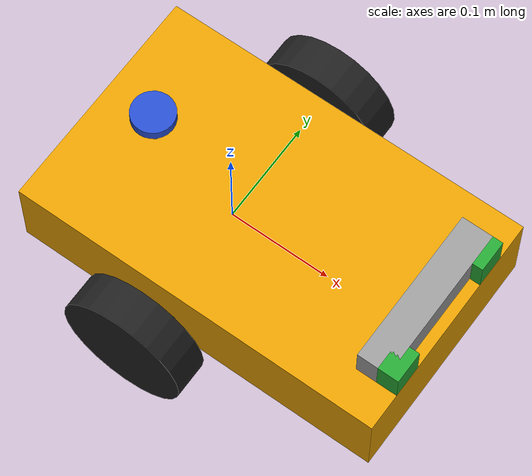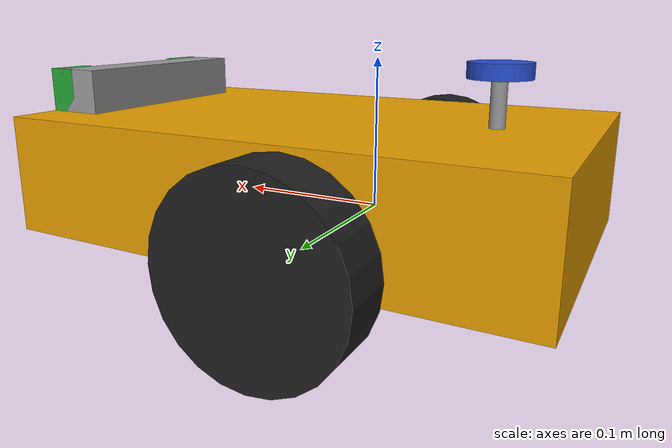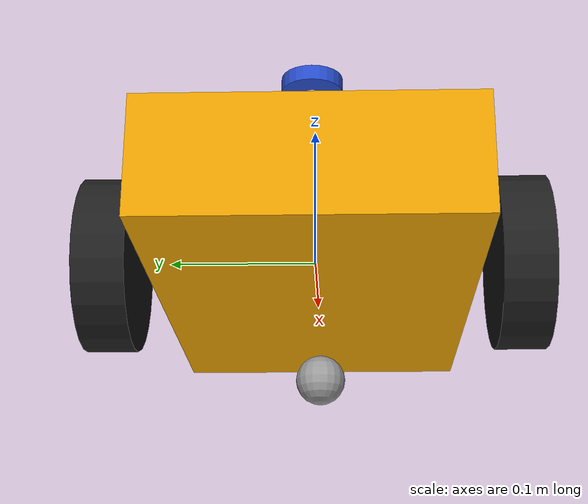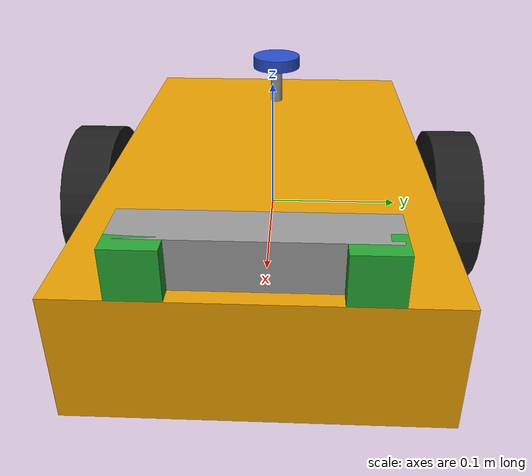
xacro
<?xml version="1.0"?>
<robot xmlns:xacro="http://www.ros.org/wiki/xacro" name="robot">

    <!-- Toggles (set from launch: stereo_mode:=stereo|mono, enable_gps:=true|false).
         They switch the *sensors* on/off; the hardware stays on the robot. -->
    <xacro:arg name="enable_right_camera" default="true"/>
    <xacro:arg name="enable_gps"          default="false"/>

    <xacro:include filename="properties.xacro"/>
    <xacro:include filename="links.xacro"/>
    <xacro:include filename="materials.xacro"/>
    <xacro:include filename="joints.xacro"/>
    <xacro:include filename="gazebo_materials.xacro"/>
    <xacro:include filename="gazebo_controls.xacro"/>
    <xacro:include filename="gazebo_sensors.xacro"/>

</robot>

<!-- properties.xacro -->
<robot xmlns:xacro="http://www.ros.org/wiki/xacro">

    <!-- Chassis -->
    <xacro:property name="chassis_length" value="0.36"/>
    <xacro:property name="chassis_width"  value="0.22"/>
    <xacro:property name="chassis_height" value="0.08"/>
    <xacro:property name="chassis_mass"   value="2.5"/>
    <xacro:property name="chassis_clearance" value="0.04"/>   <!-- chassis underside above ground -->
    <xacro:property name="chassis_x"      value="0.04"/>      <!-- chassis centre ahead of the axle -->
    <xacro:property name="chassis_z"      value="${chassis_clearance - wheel_radius + chassis_height/2}"/>
    <xacro:property name="chassis_top_z"  value="${chassis_z + chassis_height/2}"/>

    <!-- Drive wheels -->
    <xacro:property name="wheel_radius" value="0.06"/>
    <xacro:property name="wheel_width"  value="0.035"/>
    <xacro:property name="wheel_mass"   value="0.4"/>
    <xacro:property name="wheel_y"      value="0.14"/>        <!-- centre of wheel, each side -->
    <xacro:property name="wheel_separation" value="${2*wheel_y}"/>

    <!-- Front ball caster -->
    <xacro:property name="caster_radius" value="0.02"/>
    <xacro:property name="caster_mass"   value="0.05"/>
    <xacro:property name="caster_x"      value="0.17"/>
    <xacro:property name="caster_z"      value="${-wheel_radius + caster_radius}"/>

    <!-- Stereo camera bar (front, on top of chassis) -->
    <xacro:property name="stereo_baseline" value="0.12"/>
    <xacro:property name="bar_x"      value="0.195"/>
    <xacro:property name="bar_z"      value="${chassis_top_z + 0.015}"/>
    <xacro:property name="bar_length" value="0.15"/>
    <xacro:property name="cam_dx"     value="0.015"/>         <!-- camera forward of bar centre -->

    <!-- IMU (inside chassis, close to the axle) -->
    <xacro:property name="imu_x" value="0.0"/>
    <xacro:property name="imu_z" value="${chassis_z}"/>

    <!-- GPS puck on a short post, rear of chassis top -->
    <xacro:property name="gps_x"    value="-0.08"/>
    <xacro:property name="gps_post" value="0.03"/>
    <xacro:property name="gps_z"    value="${chassis_top_z + gps_post + 0.005}"/>

    <!-- Sensor settings -->
    <xacro:property name="camera_rate"   value="30"/>
    <xacro:property name="camera_width"  value="640"/>
    <xacro:property name="camera_height" value="480"/>
    <xacro:property name="camera_hfov"   value="1.089"/>
    <xacro:property name="camera_noise_stddev" value="0.007"/>
    <xacro:property name="imu_rate"      value="100"/>
    <xacro:property name="gps_rate"      value="5"/>
    <!-- GUI render overhead only; no effect on published data -->
    <xacro:property name="sensor_visualize" value="false"/>

    <!-- =====================================================================
         Inertia helper macros
         ===================================================================== -->
    <xacro:macro name="box_inertia" params="m x y z">
        <inertia ixx="${m/12*(y*y+z*z)}" ixy="0" ixz="0"
                 iyy="${m/12*(x*x+z*z)}" iyz="0"
                 izz="${m/12*(x*x+y*y)}"/>
    </xacro:macro>

    <!-- Cylinder whose axis is the link's Y axis (wheels) -->
    <xacro:macro name="wheel_inertia" params="m r w">
        <inertia ixx="${m/12*(3*r*r+w*w)}" ixy="0" ixz="0"
                 iyy="${m*r*r/2}" iyz="0"
                 izz="${m/12*(3*r*r+w*w)}"/>
    </xacro:macro>

    <!-- Cylinder whose axis is the link's Z axis (GPS puck) -->
    <xacro:macro name="cylinder_z_inertia" params="m r h">
        <inertia ixx="${m/12*(3*r*r+h*h)}" ixy="0" ixz="0"
                 iyy="${m/12*(3*r*r+h*h)}" iyz="0"
                 izz="${m*r*r/2}"/>
    </xacro:macro>

    <xacro:macro name="sphere_inertia" params="m r">
        <inertia ixx="${2*m*r*r/5}" ixy="0" ixz="0"
                 iyy="${2*m*r*r/5}" iyz="0"
                 izz="${2*m*r*r/5}"/>
    </xacro:macro>

</robot>

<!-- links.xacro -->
<robot xmlns:xacro="http://www.ros.org/wiki/xacro">

    <!-- All visuals/collisions are primitives, so the package no longer needs
         any STL meshes (and the IGN_GAZEBO_RESOURCE_PATH workaround is gone). -->

    <!-- ================ CHASSIS ================== -->
    <link name="base_link">
        <inertial>
            <origin xyz="${chassis_x} 0 ${chassis_z}" rpy="0 0 0"/>
            <mass value="${chassis_mass}"/>
            <xacro:box_inertia m="${chassis_mass}" x="${chassis_length}" y="${chassis_width}" z="${chassis_height}"/>
        </inertial>
        <visual>
            <origin xyz="${chassis_x} 0 ${chassis_z}" rpy="0 0 0"/>
            <geometry>
                <box size="${chassis_length} ${chassis_width} ${chassis_height}"/>
            </geometry>
            <material name="desert_tan"/>
        </visual>
        <collision>
            <origin xyz="${chassis_x} 0 ${chassis_z}" rpy="0 0 0"/>
            <geometry>
                <box size="${chassis_length} ${chassis_width} ${chassis_height}"/>
            </geometry>
        </collision>
    </link>

    <!-- ================= WHEELS ================== -->
    <!-- Wheel frame origin is the wheel centre (no inner-face offset). -->
    <xacro:macro name="wheel" params="prefix">
        <link name="${prefix}_wheel_link">
            <inertial>
                <origin xyz="0 0 0" rpy="0 0 0"/>
                <mass value="${wheel_mass}"/>
                <xacro:wheel_inertia m="${wheel_mass}" r="${wheel_radius}" w="${wheel_width}"/>
            </inertial>
            <visual>
                <origin xyz="0 0 0" rpy="${pi/2} 0 0"/>
                <geometry>
                    <cylinder radius="${wheel_radius}" length="${wheel_width}"/>
                </geometry>
                <material name="black"/>
            </visual>
            <collision>
                <origin xyz="0 0 0" rpy="${pi/2} 0 0"/>
                <geometry>
                    <cylinder radius="${wheel_radius}" length="${wheel_width}"/>
                </geometry>
            </collision>
        </link>
    </xacro:macro>

    <xacro:wheel prefix="l"/>
    <xacro:wheel prefix="r"/>

    <!-- ============== FRONT CASTER =============== -->
    <link name="caster_link">
        <inertial>
            <origin xyz="0 0 0" rpy="0 0 0"/>
            <mass value="${caster_mass}"/>
            <xacro:sphere_inertia m="${caster_mass}" r="${caster_radius}"/>
        </inertial>
        <visual>
            <geometry>
                <sphere radius="${caster_radius}"/>
            </geometry>
            <material name="gray"/>
        </visual>
        <collision>
            <geometry>
                <sphere radius="${caster_radius}"/>
            </geometry>
        </collision>
    </link>

    <!-- ============= STEREO CAMERA BAR =========== -->
    <link name="stereo_bar_link">
        <inertial>
            <origin xyz="0 0 0" rpy="0 0 0"/>
            <mass value="0.15"/>
            <xacro:box_inertia m="0.15" x="0.03" y="${bar_length}" z="0.03"/>
        </inertial>
        <visual>
            <geometry>
                <box size="0.03 ${bar_length} 0.03"/>
            </geometry>
            <material name="gray"/>
        </visual>
    </link>

    <xacro:macro name="camera_link" params="side">
        <link name="cam_${side}_link">
            <inertial>
                <origin xyz="0 0 0" rpy="0 0 0"/>
                <mass value="0.05"/>
                <xacro:box_inertia m="0.05" x="0.02" y="0.03" z="0.03"/>
            </inertial>
            <visual>
                <geometry>
                    <box size="0.02 0.03 0.03"/>
                </geometry>
                <material name="green"/>
            </visual>
        </link>
        <!-- Optical frame (REP-103: z forward, x right, y down). Image and
             camera_info headers use this frame. -->
        <link name="cam_${side}_optical_frame"/>
    </xacro:macro>

    <xacro:camera_link side="left"/>
    <xacro:camera_link side="right"/>

    <!-- ==================== IMU ================== -->
    <link name="imu_link">
        <inertial>
            <origin xyz="0 0 0" rpy="0 0 0"/>
            <mass value="0.02"/>
            <xacro:box_inertia m="0.02" x="0.03" y="0.02" z="0.005"/>
        </inertial>
        <visual>
            <geometry>
                <box size="0.03 0.02 0.005"/>
            </geometry>
            <material name="red"/>
        </visual>
    </link>

    <!-- ==================== GPS ================== -->
    <!-- The antenna hardware is always part of the robot (so the size budget
         is always checked with it). Only the *sensor* is toggled, via the
         enable_gps xacro arg. -->
    <link name="gps_link">
        <inertial>
            <origin xyz="0 0 0" rpy="0 0 0"/>
            <mass value="0.05"/>
            <xacro:cylinder_z_inertia m="0.05" r="0.02" h="0.01"/>
        </inertial>
        <visual>
            <geometry>
                <cylinder radius="0.02" length="0.01"/>
            </geometry>
            <material name="blue"/>
        </visual>
        <visual>
            <origin xyz="0 0 ${-(gps_post/2 + 0.005)}" rpy="0 0 0"/>
            <geometry>
                <cylinder radius="0.005" length="${gps_post}"/>
            </geometry>
            <material name="gray"/>
        </visual>
    </link>

</robot>

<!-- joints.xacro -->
<robot xmlns:xacro="http://www.ros.org/wiki/xacro">

    <!-- ============== DRIVE WHEELS =============== -->
    <joint name="l_wheel_joint" type="continuous">
        <origin xyz="0 ${wheel_y} 0" rpy="0 0 0"/>
        <parent link="base_link"/>
        <child link="l_wheel_link"/>
        <axis xyz="0 1 0"/>
        <dynamics damping="0.01" friction="0.01"/>
    </joint>

    <joint name="r_wheel_joint" type="continuous">
        <origin xyz="0 ${-wheel_y} 0" rpy="0 0 0"/>
        <parent link="base_link"/>
        <child link="r_wheel_link"/>
        <axis xyz="0 1 0"/>
        <dynamics damping="0.01" friction="0.01"/>
    </joint>

    <!-- ================= CASTER ================== -->
    <joint name="caster_joint" type="fixed">
        <origin xyz="${caster_x} 0 ${caster_z}" rpy="0 0 0"/>
        <parent link="base_link"/>
        <child link="caster_link"/>
    </joint>

    <!-- ============== STEREO CAMERAS ============= -->
    <joint name="stereo_bar_joint" type="fixed">
        <origin xyz="${bar_x} 0 ${bar_z}" rpy="0 0 0"/>
        <parent link="base_link"/>
        <child link="stereo_bar_link"/>
    </joint>

    <xacro:macro name="camera_joints" params="side y">
        <joint name="cam_${side}_joint" type="fixed">
            <origin xyz="${cam_dx} ${y} 0" rpy="0 0 0"/>
            <parent link="stereo_bar_link"/>
            <child link="cam_${side}_link"/>
        </joint>
        <joint name="cam_${side}_optical_joint" type="fixed">
            <origin xyz="0 0 0" rpy="${-pi/2} 0 ${-pi/2}"/>
            <parent link="cam_${side}_link"/>
            <child link="cam_${side}_optical_frame"/>
        </joint>
    </xacro:macro>

    <xacro:camera_joints side="left"  y="${stereo_baseline/2}"/>
    <xacro:camera_joints side="right" y="${-stereo_baseline/2}"/>

    <!-- ================ IMU / GPS ================ -->
    <joint name="imu_joint" type="fixed">
        <origin xyz="${imu_x} 0 ${imu_z}" rpy="0 0 0"/>
        <parent link="base_link"/>
        <child link="imu_link"/>
    </joint>

    <joint name="gps_joint" type="fixed">
        <origin xyz="${gps_x} 0 ${gps_z}" rpy="0 0 0"/>
        <parent link="base_link"/>
        <child link="gps_link"/>
    </joint>

</robot>
